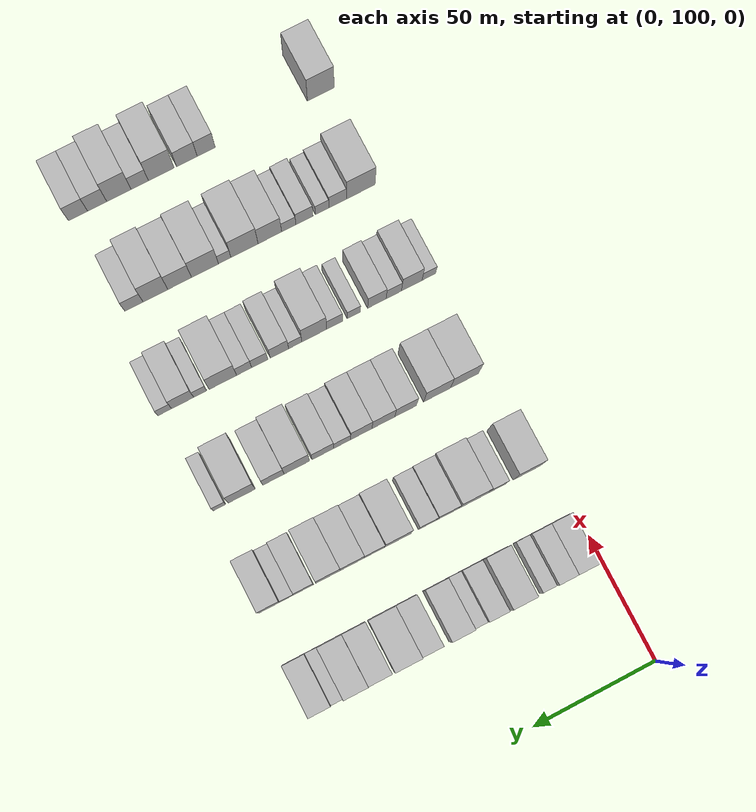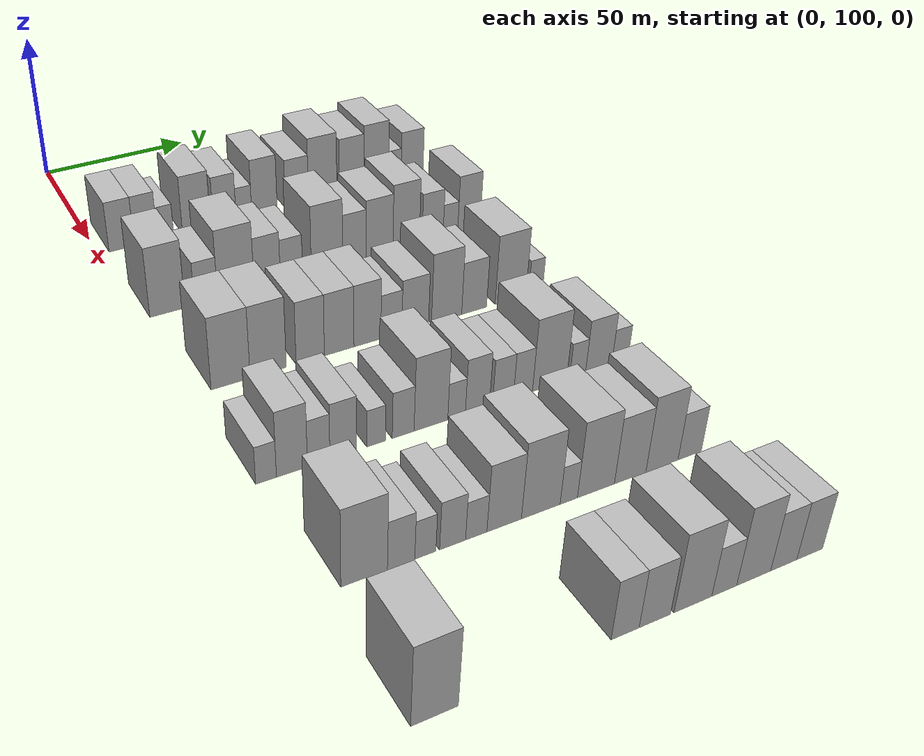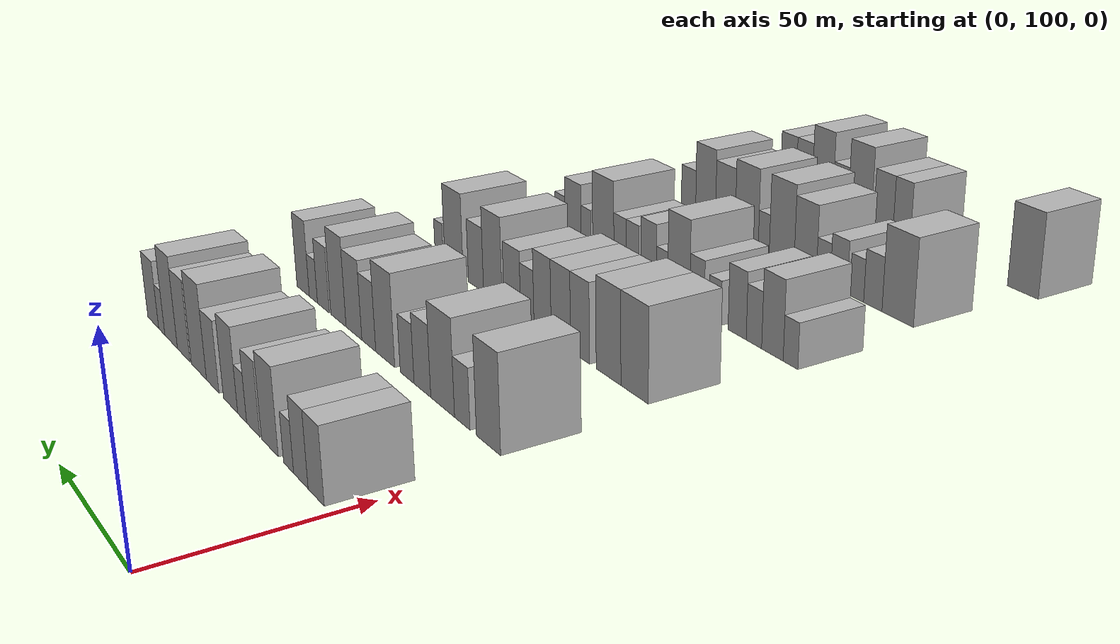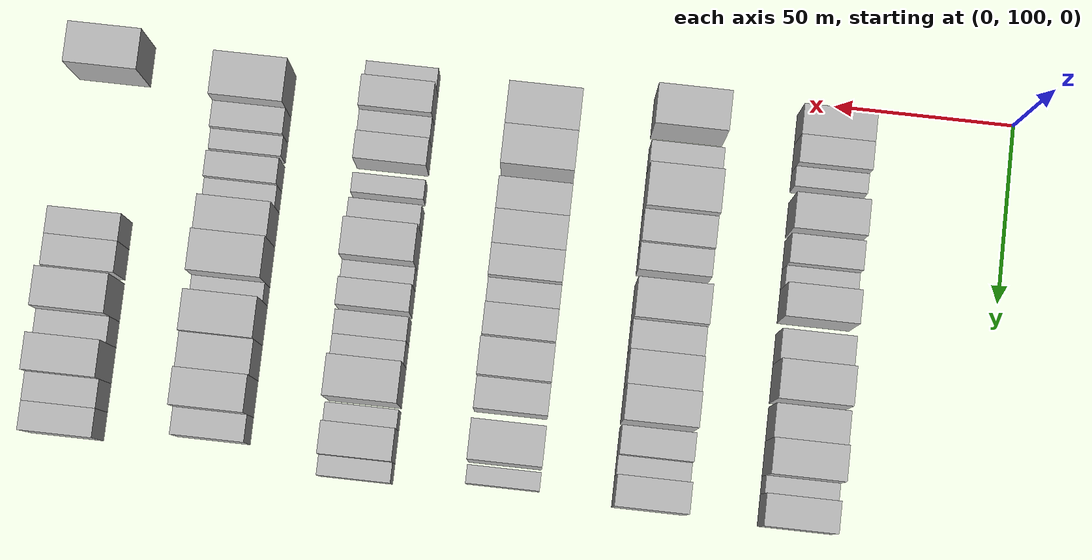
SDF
<sdf version="1.6">
 <world name="default">
  <model name="building_82">
   <static>1</static>
   <pose>50.0000 107.8698 0 0.000000 0.000000 0.000000</pose>
   <link name="link">
    <pose>0 0 9.00 0 0 0</pose>
    <collision name="collision"><geometry><box><size>20.0000 8.3929 18.0000</size></box></geometry></collision>
    <visual name="visual">
     <cast_shadows>0</cast_shadows>
     <geometry><box><size>20.0000 8.3929 18.0000</size></box></geometry>
     <material>
      <script>
       <uri>model://HANNAS_wall/materials/scripts</uri>
       <uri>model://HANNAS_wall/materials/textures</uri>
       <name>vrc/HANNAS_wall</name>
      </script>
     </material>
    </visual>
   </link>
  </model>
  <model name="building_83">
   <static>1</static>
   <pose>50.0000 115.9737 0 0.000000 0.000000 0.000000</pose>
   <link name="link">
    <pose>0 0 9.00 0 0 0</pose>
    <collision name="collision"><geometry><box><size>20.0000 7.8150 18.0000</size></box></geometry></collision>
    <visual name="visual">
     <cast_shadows>0</cast_shadows>
     <geometry><box><size>20.0000 7.8150 18.0000</size></box></geometry>
     <material>
      <script>
       <uri>model://HANNAS_wall/materials/scripts</uri>
       <uri>model://HANNAS_wall/materials/textures</uri>
       <name>vrc/HANNAS_wall</name>
      </script>
     </material>
    </visual>
   </link>
  </model>
  <model name="building_84">
   <static>1</static>
   <pose>50.0000 122.6731 0 0.000000 0.000000 0.000000</pose>
   <link name="link">
    <pose>0 0 6.00 0 0 0</pose>
    <collision name="collision"><geometry><box><size>20.0000 5.5838 12.0000</size></box></geometry></collision>
    <visual name="visual">
     <cast_shadows>0</cast_shadows>
     <geometry><box><size>20.0000 5.5838 12.0000</size></box></geometry>
     <material>
      <script>
       <uri>model://HANNAS_wall/materials/scripts</uri>
       <uri>model://HANNAS_wall/materials/textures</uri>
       <name>vrc/HANNAS_wall</name>
      </script>
     </material>
    </visual>
   </link>
  </model>
  <model name="building_85">
   <static>1</static>
   <pose>50.0000 133.3660 0 0.000000 0.000000 0.000000</pose>
   <link name="link">
    <pose>0 0 10.50 0 0 0</pose>
    <collision name="collision"><geometry><box><size>20.0000 9.8021 21.0000</size></box></geometry></collision>
    <visual name="visual">
     <cast_shadows>0</cast_shadows>
     <geometry><box><size>20.0000 9.8021 21.0000</size></box></geometry>
     <material>
      <script>
       <uri>model://HANNAS_wall/materials/scripts</uri>
       <uri>model://HANNAS_wall/materials/textures</uri>
       <name>vrc/HANNAS_wall</name>
      </script>
     </material>
    </visual>
   </link>
  </model>
  <model name="building_86">
   <static>1</static>
   <pose>50.0000 143.2916 0 0.000000 0.000000 0.000000</pose>
   <link name="link">
    <pose>0 0 9.00 0 0 0</pose>
    <collision name="collision"><geometry><box><size>20.0000 8.0491 18.0000</size></box></geometry></collision>
    <visual name="visual">
     <cast_shadows>0</cast_shadows>
     <geometry><box><size>20.0000 8.0491 18.0000</size></box></geometry>
     <material>
      <script>
       <uri>model://HANNAS_wall/materials/scripts</uri>
       <uri>model://HANNAS_wall/materials/textures</uri>
       <name>vrc/HANNAS_wall</name>
      </script>
     </material>
    </visual>
   </link>
  </model>
  <model name="building_87">
   <static>1</static>
   <pose>50.0000 150.1216 0 0.000000 0.000000 0.000000</pose>
   <link name="link">
    <pose>0 0 6.00 0 0 0</pose>
    <collision name="collision"><geometry><box><size>20.0000 5.6110 12.0000</size></box></geometry></collision>
    <visual name="visual">
     <cast_shadows>0</cast_shadows>
     <geometry><box><size>20.0000 5.6110 12.0000</size></box></geometry>
     <material>
      <script>
       <uri>model://HANNAS_wall/materials/scripts</uri>
       <uri>model://HANNAS_wall/materials/textures</uri>
       <name>vrc/HANNAS_wall</name>
      </script>
     </material>
    </visual>
   </link>
  </model>
  <model name="building_88">
   <static>1</static>
   <pose>50.0000 157.5330 0 0.000000 0.000000 0.000000</pose>
   <link name="link">
    <pose>0 0 10.50 0 0 0</pose>
    <collision name="collision"><geometry><box><size>20.0000 9.2118 21.0000</size></box></geometry></collision>
    <visual name="visual">
     <cast_shadows>0</cast_shadows>
     <geometry><box><size>20.0000 9.2118 21.0000</size></box></geometry>
     <material>
      <script>
       <uri>model://HANNAS_wall/materials/scripts</uri>
       <uri>model://HANNAS_wall/materials/textures</uri>
       <name>vrc/HANNAS_wall</name>
      </script>
     </material>
    </visual>
   </link>
  </model>
  <model name="building_89">
   <static>1</static>
   <pose>50.0000 169.3958 0 0.000000 0.000000 0.000000</pose>
   <link name="link">
    <pose>0 0 9.00 0 0 0</pose>
    <collision name="collision"><geometry><box><size>20.0000 8.5138 18.0000</size></box></geometry></collision>
    <visual name="visual">
     <cast_shadows>0</cast_shadows>
     <geometry><box><size>20.0000 8.5138 18.0000</size></box></geometry>
     <material>
      <script>
       <uri>model://HANNAS_wall/materials/scripts</uri>
       <uri>model://HANNAS_wall/materials/textures</uri>
       <name>vrc/HANNAS_wall</name>
      </script>
     </material>
    </visual>
   </link>
  </model>
  <model name="building_90">
   <static>1</static>
   <pose>50.0000 179.0152 0 0.000000 0.000000 0.000000</pose>
   <link name="link">
    <pose>0 0 12.00 0 0 0</pose>
    <collision name="collision"><geometry><box><size>20.0000 10.7250 24.0000</size></box></geometry></collision>
    <visual name="visual">
     <cast_shadows>0</cast_shadows>
     <geometry><box><size>20.0000 10.7250 24.0000</size></box></geometry>
     <material>
      <script>
       <uri>model://HANNAS_wall/materials/scripts</uri>
       <uri>model://HANNAS_wall/materials/textures</uri>
       <name>vrc/HANNAS_wall</name>
      </script>
     </material>
    </visual>
   </link>
  </model>
  <model name="building_91">
   <static>1</static>
   <pose>50.0000 190.0265 0 0.000000 0.000000 0.000000</pose>
   <link name="link">
    <pose>0 0 10.50 0 0 0</pose>
    <collision name="collision"><geometry><box><size>20.0000 9.2975 21.0000</size></box></geometry></collision>
    <visual name="visual">
     <cast_shadows>0</cast_shadows>
     <geometry><box><size>20.0000 9.2975 21.0000</size></box></geometry>
     <material>
      <script>
       <uri>model://HANNAS_wall/materials/scripts</uri>
       <uri>model://HANNAS_wall/materials/textures</uri>
       <name>vrc/HANNAS_wall</name>
      </script>
     </material>
    </visual>
   </link>
  </model>
  <model name="building_92">
   <static>1</static>
   <pose>50.0000 199.5223 0 0.000000 0.000000 0.000000</pose>
   <link name="link">
    <pose>0 0 12.00 0 0 0</pose>
    <collision name="collision"><geometry><box><size>20.0000 9.6941 24.0000</size></box></geometry></collision>
    <visual name="visual">
     <cast_shadows>0</cast_shadows>
     <geometry><box><size>20.0000 9.6941 24.0000</size></box></geometry>
     <material>
      <script>
       <uri>model://HANNAS_wall/materials/scripts</uri>
       <uri>model://HANNAS_wall/materials/textures</uri>
       <name>vrc/HANNAS_wall</name>
      </script>
     </material>
    </visual>
   </link>
  </model>
  <model name="building_93">
   <static>1</static>
   <pose>50.0000 206.8159 0 0.000000 0.000000 0.000000</pose>
   <link name="link">
    <pose>0 0 6.00 0 0 0</pose>
    <collision name="collision"><geometry><box><size>20.0000 4.8933 12.0000</size></box></geometry></collision>
    <visual name="visual">
     <cast_shadows>0</cast_shadows>
     <geometry><box><size>20.0000 4.8933 12.0000</size></box></geometry>
     <material>
      <script>
       <uri>model://HANNAS_wall/materials/scripts</uri>
       <uri>model://HANNAS_wall/materials/textures</uri>
       <name>vrc/HANNAS_wall</name>
      </script>
     </material>
    </visual>
   </link>
  </model>
  <model name="building_94">
   <static>1</static>
   <pose>50.0000 213.6531 0 0.000000 0.000000 0.000000</pose>
   <link name="link">
    <pose>0 0 9.00 0 0 0</pose>
    <collision name="collision"><geometry><box><size>20.0000 8.7811 18.0000</size></box></geometry></collision>
    <visual name="visual">
     <cast_shadows>0</cast_shadows>
     <geometry><box><size>20.0000 8.7811 18.0000</size></box></geometry>
     <material>
      <script>
       <uri>model://HANNAS_wall/materials/scripts</uri>
       <uri>model://HANNAS_wall/materials/textures</uri>
       <name>vrc/HANNAS_wall</name>
      </script>
     </material>
    </visual>
   </link>
  </model>
  <model name="building_220">
   <static>1</static>
   <pose>90.0000 109.0884 0 0.000000 0.000000 0.000000</pose>
   <link name="link">
    <pose>0 0 12.00 0 0 0</pose>
    <collision name="collision"><geometry><box><size>20.0000 11.0348 24.0000</size></box></geometry></collision>
    <visual name="visual">
     <cast_shadows>0</cast_shadows>
     <geometry><box><size>20.0000 11.0348 24.0000</size></box></geometry>
     <material>
      <script>
       <uri>model://HANNAS_wall/materials/scripts</uri>
       <uri>model://HANNAS_wall/materials/textures</uri>
       <name>vrc/HANNAS_wall</name>
      </script>
     </material>
    </visual>
   </link>
  </model>
  <model name="building_221">
   <static>1</static>
   <pose>90.0000 121.3253 0 0.000000 0.000000 0.000000</pose>
   <link name="link">
    <pose>0 0 7.50 0 0 0</pose>
    <collision name="collision"><geometry><box><size>20.0000 7.4390 15.0000</size></box></geometry></collision>
    <visual name="visual">
     <cast_shadows>0</cast_shadows>
     <geometry><box><size>20.0000 7.4390 15.0000</size></box></geometry>
     <material>
      <script>
       <uri>model://HANNAS_wall/materials/scripts</uri>
       <uri>model://HANNAS_wall/materials/textures</uri>
       <name>vrc/HANNAS_wall</name>
      </script>
     </material>
    </visual>
   </link>
  </model>
  <model name="building_222">
   <static>1</static>
   <pose>90.0000 131.0066 0 0.000000 0.000000 0.000000</pose>
   <link name="link">
    <pose>0 0 12.00 0 0 0</pose>
    <collision name="collision"><geometry><box><size>20.0000 11.9236 24.0000</size></box></geometry></collision>
    <visual name="visual">
     <cast_shadows>0</cast_shadows>
     <geometry><box><size>20.0000 11.9236 24.0000</size></box></geometry>
     <material>
      <script>
       <uri>model://HANNAS_wall/materials/scripts</uri>
       <uri>model://HANNAS_wall/materials/textures</uri>
       <name>vrc/HANNAS_wall</name>
      </script>
     </material>
    </visual>
   </link>
  </model>
  <model name="building_223">
   <static>1</static>
   <pose>90.0000 141.3409 0 0.000000 0.000000 0.000000</pose>
   <link name="link">
    <pose>0 0 9.00 0 0 0</pose>
    <collision name="collision"><geometry><box><size>20.0000 8.7450 18.0000</size></box></geometry></collision>
    <visual name="visual">
     <cast_shadows>0</cast_shadows>
     <geometry><box><size>20.0000 8.7450 18.0000</size></box></geometry>
     <material>
      <script>
       <uri>model://HANNAS_wall/materials/scripts</uri>
       <uri>model://HANNAS_wall/materials/textures</uri>
       <name>vrc/HANNAS_wall</name>
      </script>
     </material>
    </visual>
   </link>
  </model>
  <model name="building_224">
   <static>1</static>
   <pose>90.0000 149.4600 0 0.000000 0.000000 0.000000</pose>
   <link name="link">
    <pose>0 0 7.50 0 0 0</pose>
    <collision name="collision"><geometry><box><size>20.0000 7.4934 15.0000</size></box></geometry></collision>
    <visual name="visual">
     <cast_shadows>0</cast_shadows>
     <geometry><box><size>20.0000 7.4934 15.0000</size></box></geometry>
     <material>
      <script>
       <uri>model://HANNAS_wall/materials/scripts</uri>
       <uri>model://HANNAS_wall/materials/textures</uri>
       <name>vrc/HANNAS_wall</name>
      </script>
     </material>
    </visual>
   </link>
  </model>
  <model name="building_225">
   <static>1</static>
   <pose>90.0000 161.6124 0 0.000000 0.000000 0.000000</pose>
   <link name="link">
    <pose>0 0 12.00 0 0 0</pose>
    <collision name="collision"><geometry><box><size>20.0000 10.8113 24.0000</size></box></geometry></collision>
    <visual name="visual">
     <cast_shadows>0</cast_shadows>
     <geometry><box><size>20.0000 10.8113 24.0000</size></box></geometry>
     <material>
      <script>
       <uri>model://HANNAS_wall/materials/scripts</uri>
       <uri>model://HANNAS_wall/materials/textures</uri>
       <name>vrc/HANNAS_wall</name>
      </script>
     </material>
    </visual>
   </link>
  </model>
  <model name="building_226">
   <static>1</static>
   <pose>90.0000 171.1293 0 0.000000 0.000000 0.000000</pose>
   <link name="link">
    <pose>0 0 9.00 0 0 0</pose>
    <collision name="collision"><geometry><box><size>20.0000 8.2226 18.0000</size></box></geometry></collision>
    <visual name="visual">
     <cast_shadows>0</cast_shadows>
     <geometry><box><size>20.0000 8.2226 18.0000</size></box></geometry>
     <material>
      <script>
       <uri>model://HANNAS_wall/materials/scripts</uri>
       <uri>model://HANNAS_wall/materials/textures</uri>
       <name>vrc/HANNAS_wall</name>
      </script>
     </material>
    </visual>
   </link>
  </model>
  <model name="building_227">
   <static>1</static>
   <pose>90.0000 180.0561 0 0.000000 0.000000 0.000000</pose>
   <link name="link">
    <pose>0 0 10.50 0 0 0</pose>
    <collision name="collision"><geometry><box><size>20.0000 9.6311 21.0000</size></box></geometry></collision>
    <visual name="visual">
     <cast_shadows>0</cast_shadows>
     <geometry><box><size>20.0000 9.6311 21.0000</size></box></geometry>
     <material>
      <script>
       <uri>model://HANNAS_wall/materials/scripts</uri>
       <uri>model://HANNAS_wall/materials/textures</uri>
       <name>vrc/HANNAS_wall</name>
      </script>
     </material>
    </visual>
   </link>
  </model>
  <model name="building_228">
   <static>1</static>
   <pose>90.0000 189.6806 0 0.000000 0.000000 0.000000</pose>
   <link name="link">
    <pose>0 0 12.00 0 0 0</pose>
    <collision name="collision"><geometry><box><size>20.0000 9.6179 24.0000</size></box></geometry></collision>
    <visual name="visual">
     <cast_shadows>0</cast_shadows>
     <geometry><box><size>20.0000 9.6179 24.0000</size></box></geometry>
     <material>
      <script>
       <uri>model://HANNAS_wall/materials/scripts</uri>
       <uri>model://HANNAS_wall/materials/textures</uri>
       <name>vrc/HANNAS_wall</name>
      </script>
     </material>
    </visual>
   </link>
  </model>
  <model name="building_229">
   <static>1</static>
   <pose>90.0000 199.3995 0 0.000000 0.000000 0.000000</pose>
   <link name="link">
    <pose>0 0 9.00 0 0 0</pose>
    <collision name="collision"><geometry><box><size>20.0000 7.8198 18.0000</size></box></geometry></collision>
    <visual name="visual">
     <cast_shadows>0</cast_shadows>
     <geometry><box><size>20.0000 7.8198 18.0000</size></box></geometry>
     <material>
      <script>
       <uri>model://HANNAS_wall/materials/scripts</uri>
       <uri>model://HANNAS_wall/materials/textures</uri>
       <name>vrc/HANNAS_wall</name>
      </script>
     </material>
    </visual>
   </link>
  </model>
  <model name="building_230">
   <static>1</static>
   <pose>90.0000 206.0480 0 0.000000 0.000000 0.000000</pose>
   <link name="link">
    <pose>0 0 6.00 0 0 0</pose>
    <collision name="collision"><geometry><box><size>20.0000 5.4772 12.0000</size></box></geometry></collision>
    <visual name="visual">
     <cast_shadows>0</cast_shadows>
     <geometry><box><size>20.0000 5.4772 12.0000</size></box></geometry>
     <material>
      <script>
       <uri>model://HANNAS_wall/materials/scripts</uri>
       <uri>model://HANNAS_wall/materials/textures</uri>
       <name>vrc/HANNAS_wall</name>
      </script>
     </material>
    </visual>
   </link>
  </model>
  <model name="building_231">
   <static>1</static>
   <pose>90.0000 213.0313 0 0.000000 0.000000 0.000000</pose>
   <link name="link">
    <pose>0 0 10.50 0 0 0</pose>
    <collision name="collision"><geometry><box><size>20.0000 8.4895 21.0000</size></box></geometry></collision>
    <visual name="visual">
     <cast_shadows>0</cast_shadows>
     <geometry><box><size>20.0000 8.4895 21.0000</size></box></geometry>
     <material>
      <script>
       <uri>model://HANNAS_wall/materials/scripts</uri>
       <uri>model://HANNAS_wall/materials/textures</uri>
       <name>vrc/HANNAS_wall</name>
      </script>
     </material>
    </visual>
   </link>
  </model>
  <model name="building_364">
   <static>1</static>
   <pose>130.0000 113.1958 0 0.000000 0.000000 0.000000</pose>
   <link name="link">
    <pose>0 0 12.00 0 0 0</pose>
    <collision name="collision"><geometry><box><size>20.0000 11.5807 24.0000</size></box></geometry></collision>
    <visual name="visual">
     <cast_shadows>0</cast_shadows>
     <geometry><box><size>20.0000 11.5807 24.0000</size></box></geometry>
     <material>
      <script>
       <uri>model://HANNAS_wall/materials/scripts</uri>
       <uri>model://HANNAS_wall/materials/textures</uri>
       <name>vrc/HANNAS_wall</name>
      </script>
     </material>
    </visual>
   </link>
  </model>
  <model name="building_365">
   <static>1</static>
   <pose>130.0000 124.4549 0 0.000000 0.000000 0.000000</pose>
   <link name="link">
    <pose>0 0 12.00 0 0 0</pose>
    <collision name="collision"><geometry><box><size>20.0000 10.9375 24.0000</size></box></geometry></collision>
    <visual name="visual">
     <cast_shadows>0</cast_shadows>
     <geometry><box><size>20.0000 10.9375 24.0000</size></box></geometry>
     <material>
      <script>
       <uri>model://HANNAS_wall/materials/scripts</uri>
       <uri>model://HANNAS_wall/materials/textures</uri>
       <name>vrc/HANNAS_wall</name>
      </script>
     </material>
    </visual>
   </link>
  </model>
  <model name="building_366">
   <static>1</static>
   <pose>130.0000 137.3255 0 0.000000 0.000000 0.000000</pose>
   <link name="link">
    <pose>0 0 10.50 0 0 0</pose>
    <collision name="collision"><geometry><box><size>20.0000 8.8038 21.0000</size></box></geometry></collision>
    <visual name="visual">
     <cast_shadows>0</cast_shadows>
     <geometry><box><size>20.0000 8.8038 21.0000</size></box></geometry>
     <material>
      <script>
       <uri>model://HANNAS_wall/materials/scripts</uri>
       <uri>model://HANNAS_wall/materials/textures</uri>
       <name>vrc/HANNAS_wall</name>
      </script>
     </material>
    </visual>
   </link>
  </model>
  <model name="building_367">
   <static>1</static>
   <pose>130.0000 146.4136 0 0.000000 0.000000 0.000000</pose>
   <link name="link">
    <pose>0 0 10.50 0 0 0</pose>
    <collision name="collision"><geometry><box><size>20.0000 9.3724 21.0000</size></box></geometry></collision>
    <visual name="visual">
     <cast_shadows>0</cast_shadows>
     <geometry><box><size>20.0000 9.3724 21.0000</size></box></geometry>
     <material>
      <script>
       <uri>model://HANNAS_wall/materials/scripts</uri>
       <uri>model://HANNAS_wall/materials/textures</uri>
       <name>vrc/HANNAS_wall</name>
      </script>
     </material>
    </visual>
   </link>
  </model>
  <model name="building_368">
   <static>1</static>
   <pose>130.0000 155.4329 0 0.000000 0.000000 0.000000</pose>
   <link name="link">
    <pose>0 0 10.50 0 0 0</pose>
    <collision name="collision"><geometry><box><size>20.0000 8.6661 21.0000</size></box></geometry></collision>
    <visual name="visual">
     <cast_shadows>0</cast_shadows>
     <geometry><box><size>20.0000 8.6661 21.0000</size></box></geometry>
     <material>
      <script>
       <uri>model://HANNAS_wall/materials/scripts</uri>
       <uri>model://HANNAS_wall/materials/textures</uri>
       <name>vrc/HANNAS_wall</name>
      </script>
     </material>
    </visual>
   </link>
  </model>
  <model name="building_369">
   <static>1</static>
   <pose>130.0000 163.2121 0 0.000000 0.000000 0.000000</pose>
   <link name="link">
    <pose>0 0 7.50 0 0 0</pose>
    <collision name="collision"><geometry><box><size>20.0000 6.8923 15.0000</size></box></geometry></collision>
    <visual name="visual">
     <cast_shadows>0</cast_shadows>
     <geometry><box><size>20.0000 6.8923 15.0000</size></box></geometry>
     <material>
      <script>
       <uri>model://HANNAS_wall/materials/scripts</uri>
       <uri>model://HANNAS_wall/materials/textures</uri>
       <name>vrc/HANNAS_wall</name>
      </script>
     </material>
    </visual>
   </link>
  </model>
  <model name="building_370">
   <static>1</static>
   <pose>130.0000 171.0853 0 0.000000 0.000000 0.000000</pose>
   <link name="link">
    <pose>0 0 9.00 0 0 0</pose>
    <collision name="collision"><geometry><box><size>20.0000 8.8541 18.0000</size></box></geometry></collision>
    <visual name="visual">
     <cast_shadows>0</cast_shadows>
     <geometry><box><size>20.0000 8.8541 18.0000</size></box></geometry>
     <material>
      <script>
       <uri>model://HANNAS_wall/materials/scripts</uri>
       <uri>model://HANNAS_wall/materials/textures</uri>
       <name>vrc/HANNAS_wall</name>
      </script>
     </material>
    </visual>
   </link>
  </model>
  <model name="building_371">
   <static>1</static>
   <pose>130.0000 181.6483 0 0.000000 0.000000 0.000000</pose>
   <link name="link">
    <pose>0 0 12.00 0 0 0</pose>
    <collision name="collision"><geometry><box><size>20.0000 10.2719 24.0000</size></box></geometry></collision>
    <visual name="visual">
     <cast_shadows>0</cast_shadows>
     <geometry><box><size>20.0000 10.2719 24.0000</size></box></geometry>
     <material>
      <script>
       <uri>model://HANNAS_wall/materials/scripts</uri>
       <uri>model://HANNAS_wall/materials/textures</uri>
       <name>vrc/HANNAS_wall</name>
      </script>
     </material>
    </visual>
   </link>
  </model>
  <model name="building_372">
   <static>1</static>
   <pose>130.0000 191.1004 0 0.000000 0.000000 0.000000</pose>
   <link name="link">
    <pose>0 0 9.00 0 0 0</pose>
    <collision name="collision"><geometry><box><size>20.0000 8.6323 18.0000</size></box></geometry></collision>
    <visual name="visual">
     <cast_shadows>0</cast_shadows>
     <geometry><box><size>20.0000 8.6323 18.0000</size></box></geometry>
     <material>
      <script>
       <uri>model://HANNAS_wall/materials/scripts</uri>
       <uri>model://HANNAS_wall/materials/textures</uri>
       <name>vrc/HANNAS_wall</name>
      </script>
     </material>
    </visual>
   </link>
  </model>
  <model name="building_373">
   <static>1</static>
   <pose>130.0000 203.8725 0 0.000000 0.000000 0.000000</pose>
   <link name="link">
    <pose>0 0 12.00 0 0 0</pose>
    <collision name="collision"><geometry><box><size>20.0000 10.9118 24.0000</size></box></geometry></collision>
    <visual name="visual">
     <cast_shadows>0</cast_shadows>
     <geometry><box><size>20.0000 10.9118 24.0000</size></box></geometry>
     <material>
      <script>
       <uri>model://HANNAS_wall/materials/scripts</uri>
       <uri>model://HANNAS_wall/materials/textures</uri>
       <name>vrc/HANNAS_wall</name>
      </script>
     </material>
    </visual>
   </link>
  </model>
  <model name="building_374">
   <static>1</static>
   <pose>130.0000 212.8417 0 0.000000 0.000000 0.000000</pose>
   <link name="link">
    <pose>0 0 6.00 0 0 0</pose>
    <collision name="collision"><geometry><box><size>20.0000 5.0267 12.0000</size></box></geometry></collision>
    <visual name="visual">
     <cast_shadows>0</cast_shadows>
     <geometry><box><size>20.0000 5.0267 12.0000</size></box></geometry>
     <material>
      <script>
       <uri>model://HANNAS_wall/materials/scripts</uri>
       <uri>model://HANNAS_wall/materials/textures</uri>
       <name>vrc/HANNAS_wall</name>
      </script>
     </material>
    </visual>
   </link>
  </model>
  <model name="building_506">
   <static>1</static>
   <pose>170.0000 106.6089 0 0.000000 0.000000 0.000000</pose>
   <link name="link">
    <pose>0 0 6.00 0 0 0</pose>
    <collision name="collision"><geometry><box><size>20.0000 5.6682 12.0000</size></box></geometry></collision>
    <visual name="visual">
     <cast_shadows>0</cast_shadows>
     <geometry><box><size>20.0000 5.6682 12.0000</size></box></geometry>
     <material>
      <script>
       <uri>model://HANNAS_wall/materials/scripts</uri>
       <uri>model://HANNAS_wall/materials/textures</uri>
       <name>vrc/HANNAS_wall</name>
      </script>
     </material>
    </visual>
   </link>
  </model>
  <model name="building_507">
   <static>1</static>
   <pose>170.0000 113.7242 0 0.000000 0.000000 0.000000</pose>
   <link name="link">
    <pose>0 0 10.50 0 0 0</pose>
    <collision name="collision"><geometry><box><size>20.0000 8.5624 21.0000</size></box></geometry></collision>
    <visual name="visual">
     <cast_shadows>0</cast_shadows>
     <geometry><box><size>20.0000 8.5624 21.0000</size></box></geometry>
     <material>
      <script>
       <uri>model://HANNAS_wall/materials/scripts</uri>
       <uri>model://HANNAS_wall/materials/textures</uri>
       <name>vrc/HANNAS_wall</name>
      </script>
     </material>
    </visual>
   </link>
  </model>
  <model name="building_508">
   <static>1</static>
   <pose>170.0000 121.1602 0 0.000000 0.000000 0.000000</pose>
   <link name="link">
    <pose>0 0 7.50 0 0 0</pose>
    <collision name="collision"><geometry><box><size>20.0000 6.3097 15.0000</size></box></geometry></collision>
    <visual name="visual">
     <cast_shadows>0</cast_shadows>
     <geometry><box><size>20.0000 6.3097 15.0000</size></box></geometry>
     <material>
      <script>
       <uri>model://HANNAS_wall/materials/scripts</uri>
       <uri>model://HANNAS_wall/materials/textures</uri>
       <name>vrc/HANNAS_wall</name>
      </script>
     </material>
    </visual>
   </link>
  </model>
  <model name="building_509">
   <static>1</static>
   <pose>170.0000 128.1179 0 0.000000 0.000000 0.000000</pose>
   <link name="link">
    <pose>0 0 9.00 0 0 0</pose>
    <collision name="collision"><geometry><box><size>20.0000 7.6057 18.0000</size></box></geometry></collision>
    <visual name="visual">
     <cast_shadows>0</cast_shadows>
     <geometry><box><size>20.0000 7.6057 18.0000</size></box></geometry>
     <material>
      <script>
       <uri>model://HANNAS_wall/materials/scripts</uri>
       <uri>model://HANNAS_wall/materials/textures</uri>
       <name>vrc/HANNAS_wall</name>
      </script>
     </material>
    </visual>
   </link>
  </model>
  <model name="building_510">
   <static>1</static>
   <pose>170.0000 137.6183 0 0.000000 0.000000 0.000000</pose>
   <link name="link">
    <pose>0 0 6.00 0 0 0</pose>
    <collision name="collision"><geometry><box><size>20.0000 5.3952 12.0000</size></box></geometry></collision>
    <visual name="visual">
     <cast_shadows>0</cast_shadows>
     <geometry><box><size>20.0000 5.3952 12.0000</size></box></geometry>
     <material>
      <script>
       <uri>model://HANNAS_wall/materials/scripts</uri>
       <uri>model://HANNAS_wall/materials/textures</uri>
       <name>vrc/HANNAS_wall</name>
      </script>
     </material>
    </visual>
   </link>
  </model>
  <model name="building_511">
   <static>1</static>
   <pose>170.0000 145.5623 0 0.000000 0.000000 0.000000</pose>
   <link name="link">
    <pose>0 0 7.50 0 0 0</pose>
    <collision name="collision"><geometry><box><size>20.0000 6.4927 15.0000</size></box></geometry></collision>
    <visual name="visual">
     <cast_shadows>0</cast_shadows>
     <geometry><box><size>20.0000 6.4927 15.0000</size></box></geometry>
     <material>
      <script>
       <uri>model://HANNAS_wall/materials/scripts</uri>
       <uri>model://HANNAS_wall/materials/textures</uri>
       <name>vrc/HANNAS_wall</name>
      </script>
     </material>
    </visual>
   </link>
  </model>
  <model name="building_512">
   <static>1</static>
   <pose>170.0000 153.9020 0 0.000000 0.000000 0.000000</pose>
   <link name="link">
    <pose>0 0 12.00 0 0 0</pose>
    <collision name="collision"><geometry><box><size>20.0000 10.1868 24.0000</size></box></geometry></collision>
    <visual name="visual">
     <cast_shadows>0</cast_shadows>
     <geometry><box><size>20.0000 10.1868 24.0000</size></box></geometry>
     <material>
      <script>
       <uri>model://HANNAS_wall/materials/scripts</uri>
       <uri>model://HANNAS_wall/materials/textures</uri>
       <name>vrc/HANNAS_wall</name>
      </script>
     </material>
    </visual>
   </link>
  </model>
  <model name="building_513">
   <static>1</static>
   <pose>170.0000 161.6911 0 0.000000 0.000000 0.000000</pose>
   <link name="link">
    <pose>0 0 6.00 0 0 0</pose>
    <collision name="collision"><geometry><box><size>20.0000 5.3913 12.0000</size></box></geometry></collision>
    <visual name="visual">
     <cast_shadows>0</cast_shadows>
     <geometry><box><size>20.0000 5.3913 12.0000</size></box></geometry>
     <material>
      <script>
       <uri>model://HANNAS_wall/materials/scripts</uri>
       <uri>model://HANNAS_wall/materials/textures</uri>
       <name>vrc/HANNAS_wall</name>
      </script>
     </material>
    </visual>
   </link>
  </model>
  <model name="building_514">
   <static>1</static>
   <pose>170.0000 168.1473 0 0.000000 0.000000 0.000000</pose>
   <link name="link">
    <pose>0 0 9.00 0 0 0</pose>
    <collision name="collision"><geometry><box><size>20.0000 7.5211 18.0000</size></box></geometry></collision>
    <visual name="visual">
     <cast_shadows>0</cast_shadows>
     <geometry><box><size>20.0000 7.5211 18.0000</size></box></geometry>
     <material>
      <script>
       <uri>model://HANNAS_wall/materials/scripts</uri>
       <uri>model://HANNAS_wall/materials/textures</uri>
       <name>vrc/HANNAS_wall</name>
      </script>
     </material>
    </visual>
   </link>
  </model>
  <model name="building_515">
   <static>1</static>
   <pose>170.0000 176.2083 0 0.000000 0.000000 0.000000</pose>
   <link name="link">
    <pose>0 0 7.50 0 0 0</pose>
    <collision name="collision"><geometry><box><size>20.0000 6.6009 15.0000</size></box></geometry></collision>
    <visual name="visual">
     <cast_shadows>0</cast_shadows>
     <geometry><box><size>20.0000 6.6009 15.0000</size></box></geometry>
     <material>
      <script>
       <uri>model://HANNAS_wall/materials/scripts</uri>
       <uri>model://HANNAS_wall/materials/textures</uri>
       <name>vrc/HANNAS_wall</name>
      </script>
     </material>
    </visual>
   </link>
  </model>
  <model name="building_516">
   <static>1</static>
   <pose>170.0000 182.5861 0 0.000000 0.000000 0.000000</pose>
   <link name="link">
    <pose>0 0 7.50 0 0 0</pose>
    <collision name="collision"><geometry><box><size>20.0000 6.1547 15.0000</size></box></geometry></collision>
    <visual name="visual">
     <cast_shadows>0</cast_shadows>
     <geometry><box><size>20.0000 6.1547 15.0000</size></box></geometry>
     <material>
      <script>
       <uri>model://HANNAS_wall/materials/scripts</uri>
       <uri>model://HANNAS_wall/materials/textures</uri>
       <name>vrc/HANNAS_wall</name>
      </script>
     </material>
    </visual>
   </link>
  </model>
  <model name="building_517">
   <static>1</static>
   <pose>170.0000 191.2514 0 0.000000 0.000000 0.000000</pose>
   <link name="link">
    <pose>0 0 12.00 0 0 0</pose>
    <collision name="collision"><geometry><box><size>20.0000 11.1758 24.0000</size></box></geometry></collision>
    <visual name="visual">
     <cast_shadows>0</cast_shadows>
     <geometry><box><size>20.0000 11.1758 24.0000</size></box></geometry>
     <material>
      <script>
       <uri>model://HANNAS_wall/materials/scripts</uri>
       <uri>model://HANNAS_wall/materials/textures</uri>
       <name>vrc/HANNAS_wall</name>
      </script>
     </material>
    </visual>
   </link>
  </model>
  <model name="building_518">
   <static>1</static>
   <pose>170.0000 200.4848 0 0.000000 0.000000 0.000000</pose>
   <link name="link">
    <pose>0 0 6.00 0 0 0</pose>
    <collision name="collision"><geometry><box><size>20.0000 5.2911 12.0000</size></box></geometry></collision>
    <visual name="visual">
     <cast_shadows>0</cast_shadows>
     <geometry><box><size>20.0000 5.2911 12.0000</size></box></geometry>
     <material>
      <script>
       <uri>model://HANNAS_wall/materials/scripts</uri>
       <uri>model://HANNAS_wall/materials/textures</uri>
       <name>vrc/HANNAS_wall</name>
      </script>
     </material>
    </visual>
   </link>
  </model>
  <model name="building_519">
   <static>1</static>
   <pose>170.0000 207.5893 0 0.000000 0.000000 0.000000</pose>
   <link name="link">
    <pose>0 0 9.00 0 0 0</pose>
    <collision name="collision"><geometry><box><size>20.0000 8.9178 18.0000</size></box></geometry></collision>
    <visual name="visual">
     <cast_shadows>0</cast_shadows>
     <geometry><box><size>20.0000 8.9178 18.0000</size></box></geometry>
     <material>
      <script>
       <uri>model://HANNAS_wall/materials/scripts</uri>
       <uri>model://HANNAS_wall/materials/textures</uri>
       <name>vrc/HANNAS_wall</name>
      </script>
     </material>
    </visual>
   </link>
  </model>
  <model name="building_520">
   <static>1</static>
   <pose>170.0000 214.8345 0 0.000000 0.000000 0.000000</pose>
   <link name="link">
    <pose>0 0 6.00 0 0 0</pose>
    <collision name="collision"><geometry><box><size>20.0000 5.5727 12.0000</size></box></geometry></collision>
    <visual name="visual">
     <cast_shadows>0</cast_shadows>
     <geometry><box><size>20.0000 5.5727 12.0000</size></box></geometry>
     <material>
      <script>
       <uri>model://HANNAS_wall/materials/scripts</uri>
       <uri>model://HANNAS_wall/materials/textures</uri>
       <name>vrc/HANNAS_wall</name>
      </script>
     </material>
    </visual>
   </link>
  </model>
  <model name="building_657">
   <static>1</static>
   <pose>210.0000 113.9171 0 0.000000 0.000000 0.000000</pose>
   <link name="link">
    <pose>0 0 12.00 0 0 0</pose>
    <collision name="collision"><geometry><box><size>20.0000 11.9661 24.0000</size></box></geometry></collision>
    <visual name="visual">
     <cast_shadows>0</cast_shadows>
     <geometry><box><size>20.0000 11.9661 24.0000</size></box></geometry>
     <material>
      <script>
       <uri>model://HANNAS_wall/materials/scripts</uri>
       <uri>model://HANNAS_wall/materials/textures</uri>
       <name>vrc/HANNAS_wall</name>
      </script>
     </material>
    </visual>
   </link>
  </model>
  <model name="building_658">
   <static>1</static>
   <pose>210.0000 123.5096 0 0.000000 0.000000 0.000000</pose>
   <link name="link">
    <pose>0 0 7.50 0 0 0</pose>
    <collision name="collision"><geometry><box><size>20.0000 7.2191 15.0000</size></box></geometry></collision>
    <visual name="visual">
     <cast_shadows>0</cast_shadows>
     <geometry><box><size>20.0000 7.2191 15.0000</size></box></geometry>
     <material>
      <script>
       <uri>model://HANNAS_wall/materials/scripts</uri>
       <uri>model://HANNAS_wall/materials/textures</uri>
       <name>vrc/HANNAS_wall</name>
      </script>
     </material>
    </visual>
   </link>
  </model>
  <model name="building_659">
   <static>1</static>
   <pose>210.0000 129.9362 0 0.000000 0.000000 0.000000</pose>
   <link name="link">
    <pose>0 0 6.00 0 0 0</pose>
    <collision name="collision"><geometry><box><size>20.0000 5.6341 12.0000</size></box></geometry></collision>
    <visual name="visual">
     <cast_shadows>0</cast_shadows>
     <geometry><box><size>20.0000 5.6341 12.0000</size></box></geometry>
     <material>
      <script>
       <uri>model://HANNAS_wall/materials/scripts</uri>
       <uri>model://HANNAS_wall/materials/textures</uri>
       <name>vrc/HANNAS_wall</name>
      </script>
     </material>
    </visual>
   </link>
  </model>
  <model name="building_660">
   <static>1</static>
   <pose>210.0000 137.2895 0 0.000000 0.000000 0.000000</pose>
   <link name="link">
    <pose>0 0 7.50 0 0 0</pose>
    <collision name="collision"><geometry><box><size>20.0000 7.0724 15.0000</size></box></geometry></collision>
    <visual name="visual">
     <cast_shadows>0</cast_shadows>
     <geometry><box><size>20.0000 7.0724 15.0000</size></box></geometry>
     <material>
      <script>
       <uri>model://HANNAS_wall/materials/scripts</uri>
       <uri>model://HANNAS_wall/materials/textures</uri>
       <name>vrc/HANNAS_wall</name>
      </script>
     </material>
    </visual>
   </link>
  </model>
  <model name="building_661">
   <static>1</static>
   <pose>210.0000 143.7792 0 0.000000 0.000000 0.000000</pose>
   <link name="link">
    <pose>0 0 6.00 0 0 0</pose>
    <collision name="collision"><geometry><box><size>20.0000 5.9071 12.0000</size></box></geometry></collision>
    <visual name="visual">
     <cast_shadows>0</cast_shadows>
     <geometry><box><size>20.0000 5.9071 12.0000</size></box></geometry>
     <material>
      <script>
       <uri>model://HANNAS_wall/materials/scripts</uri>
       <uri>model://HANNAS_wall/materials/textures</uri>
       <name>vrc/HANNAS_wall</name>
      </script>
     </material>
    </visual>
   </link>
  </model>
  <model name="building_662">
   <static>1</static>
   <pose>210.0000 151.5950 0 0.000000 0.000000 0.000000</pose>
   <link name="link">
    <pose>0 0 10.50 0 0 0</pose>
    <collision name="collision"><geometry><box><size>20.0000 9.7244 21.0000</size></box></geometry></collision>
    <visual name="visual">
     <cast_shadows>0</cast_shadows>
     <geometry><box><size>20.0000 9.7244 21.0000</size></box></geometry>
     <material>
      <script>
       <uri>model://HANNAS_wall/materials/scripts</uri>
       <uri>model://HANNAS_wall/materials/textures</uri>
       <name>vrc/HANNAS_wall</name>
      </script>
     </material>
    </visual>
   </link>
  </model>
  <model name="building_663">
   <static>1</static>
   <pose>210.0000 162.0598 0 0.000000 0.000000 0.000000</pose>
   <link name="link">
    <pose>0 0 12.00 0 0 0</pose>
    <collision name="collision"><geometry><box><size>20.0000 11.2052 24.0000</size></box></geometry></collision>
    <visual name="visual">
     <cast_shadows>0</cast_shadows>
     <geometry><box><size>20.0000 11.2052 24.0000</size></box></geometry>
     <material>
      <script>
       <uri>model://HANNAS_wall/materials/scripts</uri>
       <uri>model://HANNAS_wall/materials/textures</uri>
       <name>vrc/HANNAS_wall</name>
      </script>
     </material>
    </visual>
   </link>
  </model>
  <model name="building_664">
   <static>1</static>
   <pose>210.0000 170.2165 0 0.000000 0.000000 0.000000</pose>
   <link name="link">
    <pose>0 0 6.00 0 0 0</pose>
    <collision name="collision"><geometry><box><size>20.0000 5.1084 12.0000</size></box></geometry></collision>
    <visual name="visual">
     <cast_shadows>0</cast_shadows>
     <geometry><box><size>20.0000 5.1084 12.0000</size></box></geometry>
     <material>
      <script>
       <uri>model://HANNAS_wall/materials/scripts</uri>
       <uri>model://HANNAS_wall/materials/textures</uri>
       <name>vrc/HANNAS_wall</name>
      </script>
     </material>
    </visual>
   </link>
  </model>
  <model name="building_665">
   <static>1</static>
   <pose>210.0000 178.3280 0 0.000000 0.000000 0.000000</pose>
   <link name="link">
    <pose>0 0 12.00 0 0 0</pose>
    <collision name="collision"><geometry><box><size>20.0000 11.1145 24.0000</size></box></geometry></collision>
    <visual name="visual">
     <cast_shadows>0</cast_shadows>
     <geometry><box><size>20.0000 11.1145 24.0000</size></box></geometry>
     <material>
      <script>
       <uri>model://HANNAS_wall/materials/scripts</uri>
       <uri>model://HANNAS_wall/materials/textures</uri>
       <name>vrc/HANNAS_wall</name>
      </script>
     </material>
    </visual>
   </link>
  </model>
  <model name="building_666">
   <static>1</static>
   <pose>210.0000 188.7424 0 0.000000 0.000000 0.000000</pose>
   <link name="link">
    <pose>0 0 10.50 0 0 0</pose>
    <collision name="collision"><geometry><box><size>20.0000 9.7144 21.0000</size></box></geometry></collision>
    <visual name="visual">
     <cast_shadows>0</cast_shadows>
     <geometry><box><size>20.0000 9.7144 21.0000</size></box></geometry>
     <material>
      <script>
       <uri>model://HANNAS_wall/materials/scripts</uri>
       <uri>model://HANNAS_wall/materials/textures</uri>
       <name>vrc/HANNAS_wall</name>
      </script>
     </material>
    </visual>
   </link>
  </model>
  <model name="building_667">
   <static>1</static>
   <pose>210.0000 198.6621 0 0.000000 0.000000 0.000000</pose>
   <link name="link">
    <pose>0 0 12.00 0 0 0</pose>
    <collision name="collision"><geometry><box><size>20.0000 10.1250 24.0000</size></box></geometry></collision>
    <visual name="visual">
     <cast_shadows>0</cast_shadows>
     <geometry><box><size>20.0000 10.1250 24.0000</size></box></geometry>
     <material>
      <script>
       <uri>model://HANNAS_wall/materials/scripts</uri>
       <uri>model://HANNAS_wall/materials/textures</uri>
       <name>vrc/HANNAS_wall</name>
      </script>
     </material>
    </visual>
   </link>
  </model>
  <model name="building_668">
   <static>1</static>
   <pose>210.0000 207.4583 0 0.000000 0.000000 0.000000</pose>
   <link name="link">
    <pose>0 0 7.50 0 0 0</pose>
    <collision name="collision"><geometry><box><size>20.0000 7.4674 15.0000</size></box></geometry></collision>
    <visual name="visual">
     <cast_shadows>0</cast_shadows>
     <geometry><box><size>20.0000 7.4674 15.0000</size></box></geometry>
     <material>
      <script>
       <uri>model://HANNAS_wall/materials/scripts</uri>
       <uri>model://HANNAS_wall/materials/textures</uri>
       <name>vrc/HANNAS_wall</name>
      </script>
     </material>
    </visual>
   </link>
  </model>
  <model name="building_796">
   <static>1</static>
   <pose>250.0000 109.8362 0 0.000000 0.000000 0.000000</pose>
   <link name="link">
    <pose>0 0 12.00 0 0 0</pose>
    <collision name="collision"><geometry><box><size>20.0000 11.2138 24.0000</size></box></geometry></collision>
    <visual name="visual">
     <cast_shadows>0</cast_shadows>
     <geometry><box><size>20.0000 11.2138 24.0000</size></box></geometry>
     <material>
      <script>
       <uri>model://HANNAS_wall/materials/scripts</uri>
       <uri>model://HANNAS_wall/materials/textures</uri>
       <name>vrc/HANNAS_wall</name>
      </script>
     </material>
    </visual>
   </link>
  </model>
  <model name="building_797">
   <static>1</static>
   <pose>250.0000 157.6884 0 0.000000 0.000000 0.000000</pose>
   <link name="link">
    <pose>0 0 9.00 0 0 0</pose>
    <collision name="collision"><geometry><box><size>20.0000 7.4969 18.0000</size></box></geometry></collision>
    <visual name="visual">
     <cast_shadows>0</cast_shadows>
     <geometry><box><size>20.0000 7.4969 18.0000</size></box></geometry>
     <material>
      <script>
       <uri>model://HANNAS_wall/materials/scripts</uri>
       <uri>model://HANNAS_wall/materials/textures</uri>
       <name>vrc/HANNAS_wall</name>
      </script>
     </material>
    </visual>
   </link>
  </model>
  <model name="building_798">
   <static>1</static>
   <pose>250.0000 165.7126 0 0.000000 0.000000 0.000000</pose>
   <link name="link">
    <pose>0 0 9.00 0 0 0</pose>
    <collision name="collision"><geometry><box><size>20.0000 8.5515 18.0000</size></box></geometry></collision>
    <visual name="visual">
     <cast_shadows>0</cast_shadows>
     <geometry><box><size>20.0000 8.5515 18.0000</size></box></geometry>
     <material>
      <script>
       <uri>model://HANNAS_wall/materials/scripts</uri>
       <uri>model://HANNAS_wall/materials/textures</uri>
       <name>vrc/HANNAS_wall</name>
      </script>
     </material>
    </visual>
   </link>
  </model>
  <model name="building_799">
   <static>1</static>
   <pose>250.0000 176.3037 0 0.000000 0.000000 0.000000</pose>
   <link name="link">
    <pose>0 0 12.00 0 0 0</pose>
    <collision name="collision"><geometry><box><size>20.0000 10.6308 24.0000</size></box></geometry></collision>
    <visual name="visual">
     <cast_shadows>0</cast_shadows>
     <geometry><box><size>20.0000 10.6308 24.0000</size></box></geometry>
     <material>
      <script>
       <uri>model://HANNAS_wall/materials/scripts</uri>
       <uri>model://HANNAS_wall/materials/textures</uri>
       <name>vrc/HANNAS_wall</name>
      </script>
     </material>
    </visual>
   </link>
  </model>
  <model name="building_800">
   <static>1</static>
   <pose>250.0000 185.2024 0 0.000000 0.000000 0.000000</pose>
   <link name="link">
    <pose>0 0 7.50 0 0 0</pose>
    <collision name="collision"><geometry><box><size>20.0000 7.1668 15.0000</size></box></geometry></collision>
    <visual name="visual">
     <cast_shadows>0</cast_shadows>
     <geometry><box><size>20.0000 7.1668 15.0000</size></box></geometry>
     <material>
      <script>
       <uri>model://HANNAS_wall/materials/scripts</uri>
       <uri>model://HANNAS_wall/materials/textures</uri>
       <name>vrc/HANNAS_wall</name>
      </script>
     </material>
    </visual>
   </link>
  </model>
  <model name="building_801">
   <static>1</static>
   <pose>250.0000 193.7872 0 0.000000 0.000000 0.000000</pose>
   <link name="link">
    <pose>0 0 12.00 0 0 0</pose>
    <collision name="collision"><geometry><box><size>20.0000 10.0028 24.0000</size></box></geometry></collision>
    <visual name="visual">
     <cast_shadows>0</cast_shadows>
     <geometry><box><size>20.0000 10.0028 24.0000</size></box></geometry>
     <material>
      <script>
       <uri>model://HANNAS_wall/materials/scripts</uri>
       <uri>model://HANNAS_wall/materials/textures</uri>
       <name>vrc/HANNAS_wall</name>
      </script>
     </material>
    </visual>
   </link>
  </model>
  <model name="building_802">
   <static>1</static>
   <pose>250.0000 202.7272 0 0.000000 0.000000 0.000000</pose>
   <link name="link">
    <pose>0 0 9.00 0 0 0</pose>
    <collision name="collision"><geometry><box><size>20.0000 7.8772 18.0000</size></box></geometry></collision>
    <visual name="visual">
     <cast_shadows>0</cast_shadows>
     <geometry><box><size>20.0000 7.8772 18.0000</size></box></geometry>
     <material>
      <script>
       <uri>model://HANNAS_wall/materials/scripts</uri>
       <uri>model://HANNAS_wall/materials/textures</uri>
       <name>vrc/HANNAS_wall</name>
      </script>
     </material>
    </visual>
   </link>
  </model>
  <model name="building_803">
   <static>1</static>
   <pose>250.0000 210.6036 0 0.000000 0.000000 0.000000</pose>
   <link name="link">
    <pose>0 0 9.00 0 0 0</pose>
    <collision name="collision"><geometry><box><size>20.0000 7.8755 18.0000</size></box></geometry></collision>
    <visual name="visual">
     <cast_shadows>0</cast_shadows>
     <geometry><box><size>20.0000 7.8755 18.0000</size></box></geometry>
     <material>
      <script>
       <uri>model://HANNAS_wall/materials/scripts</uri>
       <uri>model://HANNAS_wall/materials/textures</uri>
       <name>vrc/HANNAS_wall</name>
      </script>
     </material>
    </visual>
   </link>
  </model>
 </world>
</sdf>
